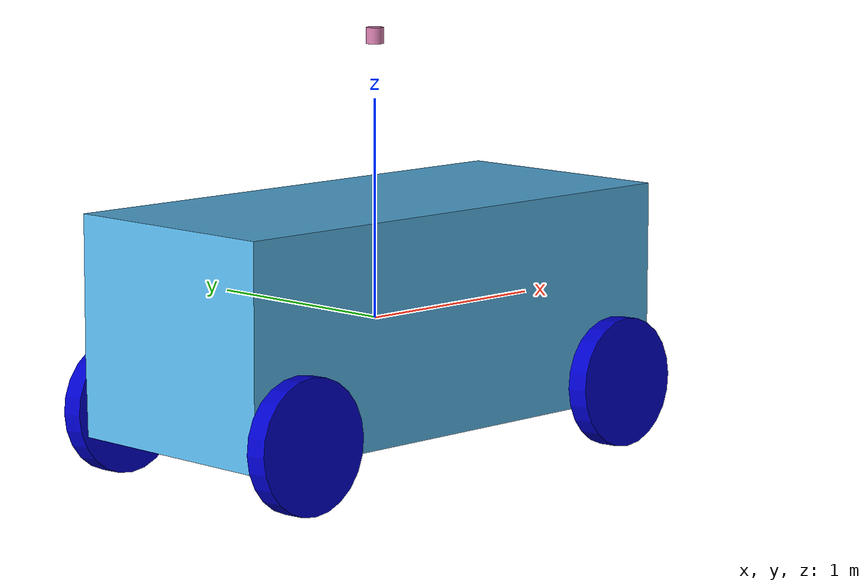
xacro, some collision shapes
<?xml version="1.0"?>
<robot xmlns:xacro="http://www.ros.org/wiki/xacro" name="os1_example">

  <material name="blue">
    <color rgba="0 0 0.8 1"/>
  </material>

  <!-- Base Footprint -->
  <link name="base_footprint" />

  <!-- Base Link -->
  <joint name="footprint" type="fixed" >
   <parent link="base_footprint" />
    <child link="base_link" />
    <origin xyz="0 0 0.05" rpy="0 0 0" />
  </joint>
  <link name="base_link" >
    <visual>
      <geometry>
        <box size="2.5 1.1 1.0" />
      </geometry>
    </visual>
    <collision>
      <geometry>
        <box size="2.5 1.1 1.0" />
      </geometry>
    </collision>
    <inertial>
      <origin xyz="0 0 0"/>
      <mass value="10"/>
      <inertia ixx="3.0" ixy="0.0" ixz="0.0"
               iyy="3.0" iyz="0.0"
               izz="3.0" />
    </inertial>
  </link>

  <!-- Bug fix: changed type from continuous to fixed to get rid of a bug
  https://www.reddit.com/r/ROS/comments/e3u3ru/rviz_error_no_transform_from_wheel_left_link/-->

  <joint name="front_left_wheel_hinge" type="continuous">
    <parent link="base_footprint"/>
    <child link="front_left_wheel"/>
    <axis xyz="0 1 0"/>
    <origin xyz="0 0 0"/>
  </joint>
  <link name="front_left_wheel">
      <pose>0.1 0.13 0.1 0 1.5707 1.5707</pose>
      <collision name="collision">
        <geometry>
          <cylinder length="0.1" radius="0.3"/>
        </geometry>
        <origin rpy="0 1.6 1.6" xyz="1.0 0.6 -0.35"/>
      </collision>
      <visual>
        <geometry>
          <cylinder length="0.1" radius="0.3"/>
        </geometry>
        <material name="blue"/>
        <origin rpy="0 1.6 1.6" xyz="1.0 0.6 -0.35"/>
      </visual>
    </link>

  <joint name="front_right_wheel_hinge" type="fixed">
    <pose>0 0 -0.03 0 0 0</pose>
    <parent link="base_footprint"/>
    <child link="front_right_wheel"/>
  </joint>
  <link name="front_right_wheel">
      <pose>0.1 0.13 0.1 0 1.5707 1.5707</pose>
      <collision name="collision">
        <geometry>
          <cylinder length="0.1" radius="0.3"/>
        </geometry>
        <origin rpy="0 1.6 1.6" xyz="1.0 -0.6 -0.35"/>
      </collision>
      <visual>
        <geometry>
          <cylinder length="0.1" radius="0.3"/>
        </geometry>
        <material name="blue"/>
        <origin rpy="0 1.6 1.6" xyz="1.0 -0.6 -0.35"/>
      </visual>
    </link>

  <joint name="back_right_wheel_hinge" type="fixed">
    <pose>0 0 -0.03 0 0 0</pose>
    <parent link="base_footprint"/>
    <child link="back_right_wheel"/>
  </joint>
  <link name="back_right_wheel">
      <pose>0.1 0.13 0.1 0 1.5707 1.5707</pose>
      <collision name="collision">
        <geometry>
          <cylinder length="0.1" radius="0.3"/>
        </geometry>
        <origin rpy="0 1.6 1.6" xyz="-1.0 -0.6 -0.35"/>
      </collision>
      <visual>
        <geometry>
          <cylinder length="0.1" radius="0.3"/>
        </geometry>
        <material name="blue"/>
        <origin rpy="0 1.6 1.6" xyz="-1.0 -0.6 -0.35"/>
      </visual>
    </link>

      <joint name="back_left_wheel_hinge" type="fixed">
    <pose>0 0 -0.03 0 0 0</pose>
    <parent link="base_footprint"/>
    <child link="back_left_wheel"/>
  </joint>
  <link name="back_left_wheel">
      <pose>0.1 0.13 0.1 0 1.5707 1.5707</pose>
      <collision name="collision">
        <geometry>
          <cylinder length="0.1" radius="0.3"/>
        </geometry>
        <origin rpy="0 1.6 1.6" xyz="-1.0 0.6 -0.35"/>
      </collision>
      <visual>
        <geometry>
          <cylinder length="0.1" radius="0.3"/>
        </geometry>
        <material name="blue"/>
        <origin rpy="0 1.6 1.6" xyz="-1.0 0.6 -0.35"/>
      </visual>
    </link>

  <xacro:include filename="$(find ouster_description)/urdf/OS1-64.urdf.xacro"/>
  <OS1-64 parent="base_link" name="os1_sensor" hz="10" samples="220">
    <origin xyz="0 0 1.2" rpy="0 0 0" />
  </OS1-64>

  <gazebo>
    <plugin name="gazebo_ros_control" filename="libgazebo_ros_control.so">
      <robotNamespace>/</robotNamespace>
    </plugin>
  </gazebo>

  <transmission name="move_front_left_wheel">
  <type>transmission_interface/SimpleTransmission</type>
  <actuator name="$front_left">
    <mechanicalReduction>1</mechanicalReduction>
  </actuator>
  <joint name="front_left_wheel_hinge">
    <hardwareInterface>PositionJointInterface</hardwareInterface>
  </joint>
</transmission>

</robot>

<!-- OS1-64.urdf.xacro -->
<robot xmlns:xacro="http://www.ros.org/wiki/xacro" name="OS1-64">
  <xacro:property name="M_PI" value="3.1415926535897931" />
  <xacro:macro name="OS1-64" params="*origin parent:=base_link name:=os1_sensor topic_points:=/os1_cloud_node/points topic_imu:=/os1_cloud_node/imu hz:=10 lasers:=64 samples:=512 min_range:=0.9 max_range:=75.0 noise:=0.008 min_angle:=-${M_PI} max_angle:=${M_PI} lidar_link:=os1_lidar imu_link:=os1_imu vfov_min:=-.26 vfov_max:=.26">

    <joint name="${name}_mount_joint" type="fixed">
      <xacro:insert_block name="origin" />
      <parent link="${parent}"/>
      <child link="${name}"/>
    </joint>

    <link name="${name}">
      <inertial>
         <mass value="0.33"/>
         <origin xyz="0 0 0.0365" rpy="0 0 0" />
         <inertia ixx="0.000241148" ixy="0" ixz="0"
          iyy="0.000241148" iyz="0" izz="0.000264"/>
      </inertial>
      <collision name="base_collision">
         <origin xyz="0 0 0.0365" rpy="0 0 0" />
         <geometry>
 	        <cylinder radius="0.04" length="0.073"/>
         </geometry>
      </collision>
      <visual name="base_visual">
         <origin xyz="0 0 0.0" rpy="0 0 1.5707" />
         <geometry>
	         <mesh filename="package://rover_description/meshes/os1_64.dae" />
         </geometry>
      </visual>
    </link>

    <link name="${imu_link}" />

    <link name="${lidar_link}" />

    <joint name="${name}_imu_link_joint" type="fixed">
      <parent link="${name}" />
      <child link="${imu_link}" />
      <origin xyz="0.006253 -0.011775 0.007645" rpy="0 0 0" />
    </joint>
    <gazebo reference="${imu_link}">
    </gazebo>

    <joint name="${name}_lidar_link_joint" type="fixed">
      <parent link="${name}" />
      <child link="${lidar_link}" />
      <origin xyz="0.0 0.0 0.03618" rpy="0 0 0" />
    </joint>

    <!-- Gazebo requires the ouster_gazebo_plugins package -->
    <gazebo reference="${name}">
        <sensor type="ray" name="${name}-OS1-64">
          <pose>0 0 0 0 0 0</pose>
          <visualize>false</visualize>
          <update_rate>${hz}</update_rate>
          <ray>
            <scan>
              <horizontal>
                <samples>${samples}</samples>
                <resolution>1</resolution>
                <min_angle>${min_angle}</min_angle>
                <max_angle>${max_angle}</max_angle>
              </horizontal>
              <vertical>
                <samples>${lasers}</samples>
                <resolution>1</resolution>
                <min_angle>${vfov_min}</min_angle>
                <max_angle>${vfov_max}</max_angle>
              </vertical>
            </scan>
            <range>
              <min>${min_range}</min>
              <max>${max_range}</max>
              <resolution>0.03</resolution>
            </range>
          </ray>
          <plugin name="gazebo_ros_laser_controller" filename="libgazebo_ros_ouster_laser.so">
            <topicName>${topic_points}</topicName>
            <frameName>${lidar_link}</frameName>
            <min_range>${min_range}</min_range>
            <max_range>${max_range}</max_range>
            <gaussianNoise>${noise}</gaussianNoise>
          </plugin>
        </sensor>
    </gazebo>

    <!-- IMU -->
  <gazebo>
    <plugin name="imu_controller" filename="libhector_gazebo_ros_imu.so">
      <robotNamespace>/</robotNamespace>
      <updateRate>100.0</updateRate>
      <bodyName>${imu_link}</bodyName>
      <topicName>${topic_imu}</topicName>
      <accelDrift>0.005 0.005 0.005</accelDrift>
      <accelGaussianNoise>0.005 0.005 0.005</accelGaussianNoise>
      <rateDrift>0.005 0.005 0.005 </rateDrift>
      <rateGaussianNoise>0.005 0.005 0.005 </rateGaussianNoise>
      <headingDrift>0.005</headingDrift>
      <headingGaussianNoise>0.005</headingGaussianNoise>
    </plugin>
  </gazebo>

  </xacro:macro>
</robot>
